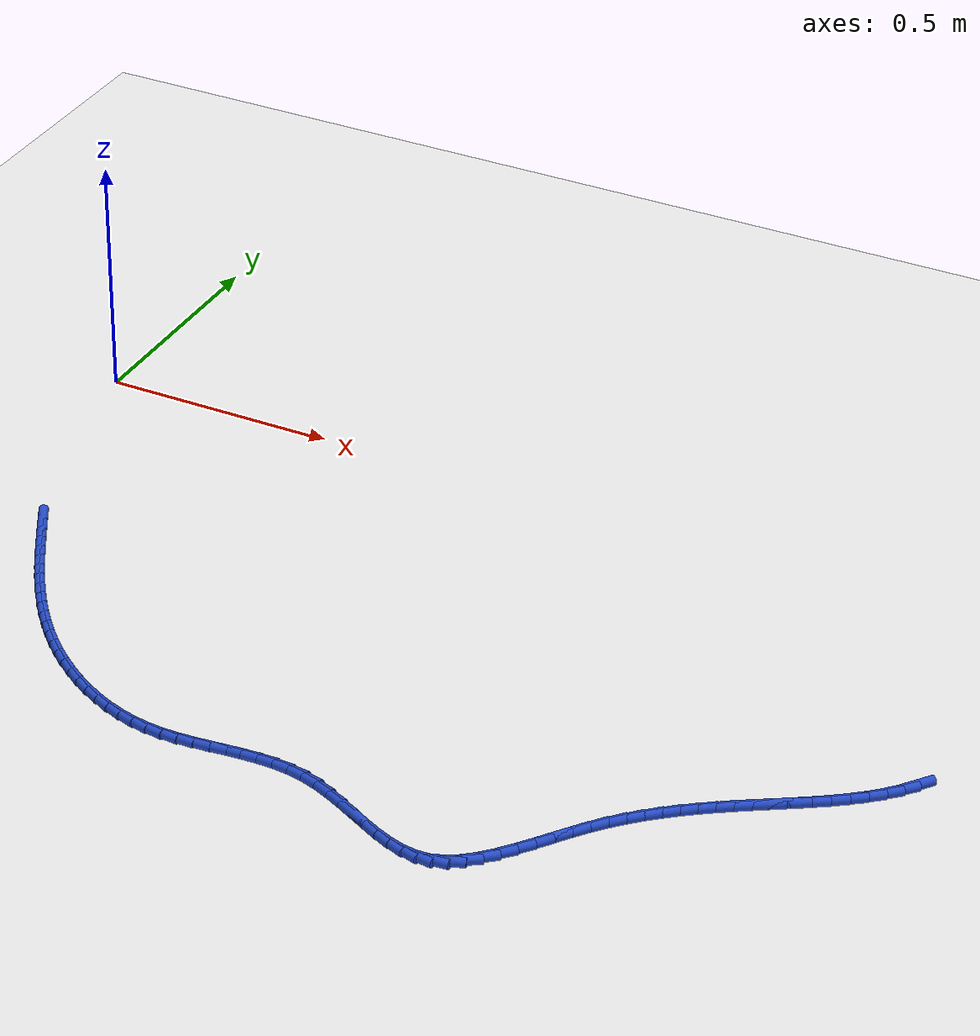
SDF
<sdf version="1.6">
 <world name="default">
  <model name="ground_plane">
   <static>1</static>
   <link name="link">
    <collision name="collision">
     <geometry><plane><normal>0 0 1</normal><size>100 100</size></plane></geometry>
     <surface><friction><ode><mu>100</mu><mu2>50</mu2></ode></friction></surface>
    </collision>
    <visual name="visual">
     <cast_shadows>0</cast_shadows>
     <geometry><plane><normal>0 0 1</normal><size>100 100</size></plane></geometry>
     <material>
      <script><uri>file://media/materials/scripts/gazebo.material</uri><name>Gazebo/WhiteGlow</name></script>
     </material>
    </visual>
   </link>
  </model>
  <model name="line">
   <link name="link_123">
    <pose>2.02572650319894 -0.5620259517079278 0.01 0 1.57 0.9168258184440197</pose>
    <collision name="collision">
     <geometry><cylinder><radius>0.01</radius><length>0.08</length></cylinder></geometry>
    </collision>
    <visual name="visual">
     <material>
      <script><name>Gazebo/Blue</name><uri>file://media/materials/scripts/gazebo.material</uri></script>
     </material>
     <geometry><cylinder><radius>0.01</radius><length>0.08</length></cylinder></geometry>
    </visual>
   </link>
   <link name="link_124">
    <pose>2.0061303369699215 -0.5875921096203487 0.01 0 1.57 0.8193676750237584</pose>
    <collision name="collision">
     <geometry><cylinder><radius>0.01</radius><length>0.08</length></cylinder></geometry>
    </collision>
    <visual name="visual">
     <material>
      <script><name>Gazebo/Blue</name><uri>file://media/materials/scripts/gazebo.material</uri></script>
     </material>
     <geometry><cylinder><radius>0.01</radius><length>0.08</length></cylinder></geometry>
    </visual>
   </link>
   <link name="link_125">
    <pose>1.9837516621861226 -0.6115452595180886 0.01 0 1.57 0.7397603806461012</pose>
    <collision name="collision">
     <geometry><cylinder><radius>0.01</radius><length>0.08</length></cylinder></geometry>
    </collision>
    <visual name="visual">
     <material>
      <script><name>Gazebo/Blue</name><uri>file://media/materials/scripts/gazebo.material</uri></script>
     </material>
     <geometry><cylinder><radius>0.01</radius><length>0.08</length></cylinder></geometry>
    </visual>
   </link>
   <link name="link_126">
    <pose>1.959057941344663 -0.634081989562781 0.01 0 1.57 0.6766644441975964</pose>
    <collision name="collision">
     <geometry><cylinder><radius>0.01</radius><length>0.08</length></cylinder></geometry>
    </collision>
    <visual name="visual">
     <material>
      <script><name>Gazebo/Blue</name><uri>file://media/materials/scripts/gazebo.material</uri></script>
     </material>
     <geometry><cylinder><radius>0.01</radius><length>0.08</length></cylinder></geometry>
    </visual>
   </link>
   <link name="link_127">
    <pose>1.9325166369426614 -0.6553988879160606 0.01 0 1.57 0.6284955298735553</pose>
    <collision name="collision">
     <geometry><cylinder><radius>0.01</radius><length>0.08</length></cylinder></geometry>
    </collision>
    <visual name="visual">
     <material>
      <script><name>Gazebo/Blue</name><uri>file://media/materials/scripts/gazebo.material</uri></script>
     </material>
     <geometry><cylinder><radius>0.01</radius><length>0.08</length></cylinder></geometry>
    </visual>
   </link>
   <link name="link_128">
    <pose>1.904595211477238 -0.675692542739562 0.01 0 1.57 0.5938447899911372</pose>
    <collision name="collision">
     <geometry><cylinder><radius>0.01</radius><length>0.08</length></cylinder></geometry>
    </collision>
    <visual name="visual">
     <material>
      <script><name>Gazebo/Blue</name><uri>file://media/materials/scripts/gazebo.material</uri></script>
     </material>
     <geometry><cylinder><radius>0.01</radius><length>0.08</length></cylinder></geometry>
    </visual>
   </link>
   <link name="link_129">
    <pose>1.8757611274455126 -0.6951595421949199 0.01 0 1.57 0.5716887323452812</pose>
    <collision name="collision">
     <geometry><cylinder><radius>0.01</radius><length>0.08</length></cylinder></geometry>
    </collision>
    <visual name="visual">
     <material>
      <script><name>Gazebo/Blue</name><uri>file://media/materials/scripts/gazebo.material</uri></script>
     </material>
     <geometry><cylinder><radius>0.01</radius><length>0.08</length></cylinder></geometry>
    </visual>
   </link>
   <link name="link_130">
    <pose>1.8464818473446036 -0.7139964744437683 0.01 0 1.57 0.5614899366355359</pose>
    <collision name="collision">
     <geometry><cylinder><radius>0.01</radius><length>0.08</length></cylinder></geometry>
    </collision>
    <visual name="visual">
     <material>
      <script><name>Gazebo/Blue</name><uri>file://media/materials/scripts/gazebo.material</uri></script>
     </material>
     <geometry><cylinder><radius>0.01</radius><length>0.08</length></cylinder></geometry>
    </visual>
   </link>
   <link name="link_131">
    <pose>1.8172248336716315 -0.732399927647742 0.01 0 1.57 0.5631276586455284</pose>
    <collision name="collision">
     <geometry><cylinder><radius>0.01</radius><length>0.08</length></cylinder></geometry>
    </collision>
    <visual name="visual">
     <material>
      <script><name>Gazebo/Blue</name><uri>file://media/materials/scripts/gazebo.material</uri></script>
     </material>
     <geometry><cylinder><radius>0.01</radius><length>0.08</length></cylinder></geometry>
    </visual>
   </link>
   <link name="link_132">
    <pose>1.788447296705108 -0.7505676225354588 0.01 0 1.57 0.5740536596827077</pose>
    <collision name="collision">
     <geometry><cylinder><radius>0.01</radius><length>0.08</length></cylinder></geometry>
    </collision>
    <visual name="visual">
     <material>
      <script><name>Gazebo/Blue</name><uri>file://media/materials/scripts/gazebo.material</uri></script>
     </material>
     <geometry><cylinder><radius>0.01</radius><length>0.08</length></cylinder></geometry>
    </visual>
   </link>
   <link name="link_133">
    <pose>1.7603735091028572 -0.7687230125543267 0.01 0 1.57 0.5915516911203159</pose>
    <collision name="collision">
     <geometry><cylinder><radius>0.01</radius><length>0.08</length></cylinder></geometry>
    </collision>
    <visual name="visual">
     <material>
      <script><name>Gazebo/Blue</name><uri>file://media/materials/scripts/gazebo.material</uri></script>
     </material>
     <geometry><cylinder><radius>0.01</radius><length>0.08</length></cylinder></geometry>
    </visual>
   </link>
   <link name="link_134">
    <pose>1.7329963856652735 -0.7871151093534183 0.01 0 1.57 0.615503261659312</pose>
    <collision name="collision">
     <geometry><cylinder><radius>0.01</radius><length>0.08</length></cylinder></geometry>
    </collision>
    <visual name="visual">
     <material>
      <script><name>Gazebo/Blue</name><uri>file://media/materials/scripts/gazebo.material</uri></script>
     </material>
     <geometry><cylinder><radius>0.01</radius><length>0.08</length></cylinder></geometry>
    </visual>
   </link>
   <link name="link_135">
    <pose>1.7062989049313857 -0.8059940222448587 0.01 0 1.57 0.6457023532757835</pose>
    <collision name="collision">
     <geometry><cylinder><radius>0.01</radius><length>0.08</length></cylinder></geometry>
    </collision>
    <visual name="visual">
     <material>
      <script><name>Gazebo/Blue</name><uri>file://media/materials/scripts/gazebo.material</uri></script>
     </material>
     <geometry><cylinder><radius>0.01</radius><length>0.08</length></cylinder></geometry>
    </visual>
   </link>
   <link name="link_136">
    <pose>1.6802640454402222 -0.8256098605407723 0.01 0 1.57 0.6817017660045945</pose>
    <collision name="collision">
     <geometry><cylinder><radius>0.01</radius><length>0.08</length></cylinder></geometry>
    </collision>
    <visual name="visual">
     <material>
      <script><name>Gazebo/Blue</name><uri>file://media/materials/scripts/gazebo.material</uri></script>
     </material>
     <geometry><cylinder><radius>0.01</radius><length>0.08</length></cylinder></geometry>
    </visual>
   </link>
   <link name="link_137">
    <pose>1.6548747857308121 -0.8462127335532843 0.01 0 1.57 0.7228057721050001</pose>
    <collision name="collision">
     <geometry><cylinder><radius>0.01</radius><length>0.08</length></cylinder></geometry>
    </collision>
    <visual name="visual">
     <material>
      <script><name>Gazebo/Blue</name><uri>file://media/materials/scripts/gazebo.material</uri></script>
     </material>
     <geometry><cylinder><radius>0.01</radius><length>0.08</length></cylinder></geometry>
    </visual>
   </link>
   <link name="link_138">
    <pose>1.6301141043421836 -0.8680527505945199 0.01 0 1.57 0.7680890970757797</pose>
    <collision name="collision">
     <geometry><cylinder><radius>0.01</radius><length>0.08</length></cylinder></geometry>
    </collision>
    <visual name="visual">
     <material>
      <script><name>Gazebo/Blue</name><uri>file://media/materials/scripts/gazebo.material</uri></script>
     </material>
     <geometry><cylinder><radius>0.01</radius><length>0.08</length></cylinder></geometry>
    </visual>
   </link>
   <link name="link_139">
    <pose>1.6059649798133657 -0.8913800209766031 0.01 0 1.57 0.8164467604643182</pose>
    <collision name="collision">
     <geometry><cylinder><radius>0.01</radius><length>0.08</length></cylinder></geometry>
    </collision>
    <visual name="visual">
     <material>
      <script><name>Gazebo/Blue</name><uri>file://media/materials/scripts/gazebo.material</uri></script>
     </material>
     <geometry><cylinder><radius>0.01</radius><length>0.08</length></cylinder></geometry>
    </visual>
   </link>
   <link name="link_140">
    <pose>1.5824103906833875 -0.9164446540116588 0.01 0 1.57 0.8666641975430633</pose>
    <collision name="collision">
     <geometry><cylinder><radius>0.01</radius><length>0.08</length></cylinder></geometry>
    </collision>
    <visual name="visual">
     <material>
      <script><name>Gazebo/Blue</name><uri>file://media/materials/scripts/gazebo.material</uri></script>
     </material>
     <geometry><cylinder><radius>0.01</radius><length>0.08</length></cylinder></geometry>
    </visual>
   </link>
   <link name="link_141">
    <pose>1.5594332598909573 -0.9434964076149732 0.01 0 1.57 0.911592339877278</pose>
    <collision name="collision">
     <geometry><cylinder><radius>0.01</radius><length>0.08</length></cylinder></geometry>
    </collision>
    <visual name="visual">
     <material>
      <script><name>Gazebo/Blue</name><uri>file://media/materials/scripts/gazebo.material</uri></script>
     </material>
     <geometry><cylinder><radius>0.01</radius><length>0.08</length></cylinder></geometry>
    </visual>
   </link>
   <link name="link_142">
    <pose>1.5369695425548875 -0.9724882006966464 0.01 0 1.57 0.9356388455305841</pose>
    <collision name="collision">
     <geometry><cylinder><radius>0.01</radius><length>0.08</length></cylinder></geometry>
    </collision>
    <visual name="visual">
     <material>
      <script><name>Gazebo/Blue</name><uri>file://media/materials/scripts/gazebo.material</uri></script>
     </material>
     <geometry><cylinder><radius>0.01</radius><length>0.08</length></cylinder></geometry>
    </visual>
   </link>
   <link name="link_143">
    <pose>1.5148228065319613 -1.0025362579525954 0.01 0 1.57 0.9381569502244445</pose>
    <collision name="collision">
     <geometry><cylinder><radius>0.01</radius><length>0.08</length></cylinder></geometry>
    </collision>
    <visual name="visual">
     <material>
      <script><name>Gazebo/Blue</name><uri>file://media/materials/scripts/gazebo.material</uri></script>
     </material>
     <geometry><cylinder><radius>0.01</radius><length>0.08</length></cylinder></geometry>
    </visual>
   </link>
   <link name="link_144">
    <pose>1.492773462258145 -1.0326104480040337 0.01 0 1.57 0.9192230128820612</pose>
    <collision name="collision">
     <geometry><cylinder><radius>0.01</radius><length>0.08</length></cylinder></geometry>
    </collision>
    <visual name="visual">
     <material>
      <script><name>Gazebo/Blue</name><uri>file://media/materials/scripts/gazebo.material</uri></script>
     </material>
     <geometry><cylinder><radius>0.01</radius><length>0.08</length></cylinder></geometry>
    </visual>
   </link>
   <link name="link_145">
    <pose>1.470601920169404 -1.061680639472176 0.01 0 1.57 0.8764231776754625</pose>
    <collision name="collision">
     <geometry><cylinder><radius>0.01</radius><length>0.08</length></cylinder></geometry>
    </collision>
    <visual name="visual">
     <material>
      <script><name>Gazebo/Blue</name><uri>file://media/materials/scripts/gazebo.material</uri></script>
     </material>
     <geometry><cylinder><radius>0.01</radius><length>0.08</length></cylinder></geometry>
    </visual>
   </link>
   <link name="link_146">
    <pose>1.4480885907017067 -1.088716700978235 0.01 0 1.57 0.8044640859596119</pose>
    <collision name="collision">
     <geometry><cylinder><radius>0.01</radius><length>0.08</length></cylinder></geometry>
    </collision>
    <visual name="visual">
     <material>
      <script><name>Gazebo/Blue</name><uri>file://media/materials/scripts/gazebo.material</uri></script>
     </material>
     <geometry><cylinder><radius>0.01</radius><length>0.08</length></cylinder></geometry>
    </visual>
   </link>
   <link name="link_147">
    <pose>1.4250138842910192 -1.1126885011434247 0.01 0 1.57 0.694680879472128</pose>
    <collision name="collision">
     <geometry><cylinder><radius>0.01</radius><length>0.08</length></cylinder></geometry>
    </collision>
    <visual name="visual">
     <material>
      <script><name>Gazebo/Blue</name><uri>file://media/materials/scripts/gazebo.material</uri></script>
     </material>
     <geometry><cylinder><radius>0.01</radius><length>0.08</length></cylinder></geometry>
    </visual>
   </link>
   <link name="link_148">
    <pose>1.4011582113733083 -1.1325659085889594 0.01 0 1.57 0.535647546406085</pose>
    <collision name="collision">
     <geometry><cylinder><radius>0.01</radius><length>0.08</length></cylinder></geometry>
    </collision>
    <visual name="visual">
     <material>
      <script><name>Gazebo/Blue</name><uri>file://media/materials/scripts/gazebo.material</uri></script>
     </material>
     <geometry><cylinder><radius>0.01</radius><length>0.08</length></cylinder></geometry>
    </visual>
   </link>
   <link name="link_149">
    <pose>1.3763019823845406 -1.147318791936053 0.01 0 1.57 0.31851423371168996</pose>
    <collision name="collision">
     <geometry><cylinder><radius>0.01</radius><length>0.08</length></cylinder></geometry>
    </collision>
    <visual name="visual">
     <material>
      <script><name>Gazebo/Blue</name><uri>file://media/materials/scripts/gazebo.material</uri></script>
     </material>
     <geometry><cylinder><radius>0.01</radius><length>0.08</length></cylinder></geometry>
    </visual>
   </link>
   <link name="link_150">
    <pose>1.3502256444737462 -1.155917237078907 0.01 0 1.57 0.06806609103597365</pose>
    <collision name="collision">
     <geometry><cylinder><radius>0.01</radius><length>0.08</length></cylinder></geometry>
    </collision>
    <visual name="visual">
     <material>
      <script><name>Gazebo/Blue</name><uri>file://media/materials/scripts/gazebo.material</uri></script>
     </material>
     <geometry><cylinder><radius>0.01</radius><length>0.08</length></cylinder></geometry>
    </visual>
   </link>
   <link name="link_151">
    <pose>1.3227867726834666 -1.157787783459343 0.01 0 1.57 -0.1388695908707966</pose>
    <collision name="collision">
     <geometry><cylinder><radius>0.01</radius><length>0.08</length></cylinder></geometry>
    </collision>
    <visual name="visual">
     <material>
      <script><name>Gazebo/Blue</name><uri>file://media/materials/scripts/gazebo.material</uri></script>
     </material>
     <geometry><cylinder><radius>0.01</radius><length>0.08</length></cylinder></geometry>
    </visual>
   </link>
   <link name="link_152">
    <pose>1.2940826907227096 -1.1537758363063848 0.01 0 1.57 -0.28611113721716214</pose>
    <collision name="collision">
     <geometry><cylinder><radius>0.01</radius><length>0.08</length></cylinder></geometry>
    </collision>
    <visual name="visual">
     <material>
      <script><name>Gazebo/Blue</name><uri>file://media/materials/scripts/gazebo.material</uri></script>
     </material>
     <geometry><cylinder><radius>0.01</radius><length>0.08</length></cylinder></geometry>
    </visual>
   </link>
   <link name="link_153">
    <pose>1.2642571709005976 -1.145001690092611 0.01 0 1.57 -0.38315601298711505</pose>
    <collision name="collision">
     <geometry><cylinder><radius>0.01</radius><length>0.08</length></cylinder></geometry>
    </collision>
    <visual name="visual">
     <material>
      <script><name>Gazebo/Blue</name><uri>file://media/materials/scripts/gazebo.material</uri></script>
     </material>
     <geometry><cylinder><radius>0.01</radius><length>0.08</length></cylinder></geometry>
    </visual>
   </link>
   <link name="link_154">
    <pose>1.233453985526252 -1.1325856392906017 0.01 0 1.57 -0.44112596272156723</pose>
    <collision name="collision">
     <geometry><cylinder><radius>0.01</radius><length>0.08</length></cylinder></geometry>
    </collision>
    <visual name="visual">
     <material>
      <script><name>Gazebo/Blue</name><uri>file://media/materials/scripts/gazebo.material</uri></script>
     </material>
     <geometry><cylinder><radius>0.01</radius><length>0.08</length></cylinder></geometry>
    </visual>
   </link>
   <link name="link_155">
    <pose>1.2018169069087958 -1.1176479783729365 0.01 0 1.57 -0.46797822708476705</pose>
    <collision name="collision">
     <geometry><cylinder><radius>0.01</radius><length>0.08</length></cylinder></geometry>
    </collision>
    <visual name="visual">
     <material>
      <script><name>Gazebo/Blue</name><uri>file://media/materials/scripts/gazebo.material</uri></script>
     </material>
     <geometry><cylinder><radius>0.01</radius><length>0.08</length></cylinder></geometry>
    </visual>
   </link>
   <link name="link_156">
    <pose>1.1694897073573507 -1.101309001812194 0.01 0 1.57 -0.46809653211206836</pose>
    <collision name="collision">
     <geometry><cylinder><radius>0.01</radius><length>0.08</length></cylinder></geometry>
    </collision>
    <visual name="visual">
     <material>
      <script><name>Gazebo/Blue</name><uri>file://media/materials/scripts/gazebo.material</uri></script>
     </material>
     <geometry><cylinder><radius>0.01</radius><length>0.08</length></cylinder></geometry>
    </visual>
   </link>
   <link name="link_157">
    <pose>1.1366161591810375 -1.0846890040809538 0.01 0 1.57 -0.4428245082812941</pose>
    <collision name="collision">
     <geometry><cylinder><radius>0.01</radius><length>0.08</length></cylinder></geometry>
    </collision>
    <visual name="visual">
     <material>
      <script><name>Gazebo/Blue</name><uri>file://media/materials/scripts/gazebo.material</uri></script>
     </material>
     <geometry><cylinder><radius>0.01</radius><length>0.08</length></cylinder></geometry>
    </visual>
   </link>
   <link name="link_158">
    <pose>1.1033400346889812 -1.0689082796517964 0.01 0 1.57 -0.3909297043378241</pose>
    <collision name="collision">
     <geometry><cylinder><radius>0.01</radius><length>0.08</length></cylinder></geometry>
    </collision>
    <visual name="visual">
     <material>
      <script><name>Gazebo/Blue</name><uri>file://media/materials/scripts/gazebo.material</uri></script>
     </material>
     <geometry><cylinder><radius>0.01</radius><length>0.08</length></cylinder></geometry>
    </visual>
   </link>
   <link name="link_159">
    <pose>1.0698051061903031 -1.0550871229973007 0.01 0 1.57 -0.30898321187638306</pose>
    <collision name="collision">
     <geometry><cylinder><radius>0.01</radius><length>0.08</length></cylinder></geometry>
    </collision>
    <visual name="visual">
     <material>
      <script><name>Gazebo/Blue</name><uri>file://media/materials/scripts/gazebo.material</uri></script>
     </material>
     <geometry><cylinder><radius>0.01</radius><length>0.08</length></cylinder></geometry>
    </visual>
   </link>
   <link name="link_160">
    <pose>1.0361551459941252 -1.0443458285900455 0.01 0 1.57 -0.19828216299461632</pose>
    <collision name="collision">
     <geometry><cylinder><radius>0.01</radius><length>0.08</length></cylinder></geometry>
    </collision>
    <visual name="visual">
     <material>
      <script><name>Gazebo/Blue</name><uri>file://media/materials/scripts/gazebo.material</uri></script>
     </material>
     <geometry><cylinder><radius>0.01</radius><length>0.08</length></cylinder></geometry>
    </visual>
   </link>
   <link name="link_161">
    <pose>1.0025190572535252 -1.037587590596732 0.01 0 1.57 -0.09274800086813154</pose>
    <collision name="collision">
     <geometry><cylinder><radius>0.01</radius><length>0.08</length></cylinder></geometry>
    </collision>
    <visual name="visual">
     <material>
      <script><name>Gazebo/Blue</name><uri>file://media/materials/scripts/gazebo.material</uri></script>
     </material>
     <geometry><cylinder><radius>0.01</radius><length>0.08</length></cylinder></geometry>
    </visual>
   </link>
   <link name="link_162">
    <pose>0.9689400376911078 -1.0344642426417334 0.01 0 1.57 -0.008476023704439483</pose>
    <collision name="collision">
     <geometry><cylinder><radius>0.01</radius><length>0.08</length></cylinder></geometry>
    </collision>
    <visual name="visual">
     <material>
      <script><name>Gazebo/Blue</name><uri>file://media/materials/scripts/gazebo.material</uri></script>
     </material>
     <geometry><cylinder><radius>0.01</radius><length>0.08</length></cylinder></geometry>
    </visual>
   </link>
   <link name="link_163">
    <pose>0.9354306420815793 -1.034180209408262 0.01 0 1.57 0.05257752502908102</pose>
    <collision name="collision">
     <geometry><cylinder><radius>0.01</radius><length>0.08</length></cylinder></geometry>
    </collision>
    <visual name="visual">
     <material>
      <script><name>Gazebo/Blue</name><uri>file://media/materials/scripts/gazebo.material</uri></script>
     </material>
     <geometry><cylinder><radius>0.01</radius><length>0.08</length></cylinder></geometry>
    </visual>
   </link>
   <link name="link_164">
    <pose>0.9020033866724522 -1.0359393530549725 0.01 0 1.57 0.08994413229092467</pose>
    <collision name="collision">
     <geometry><cylinder><radius>0.01</radius><length>0.08</length></cylinder></geometry>
    </collision>
    <visual name="visual">
     <material>
      <script><name>Gazebo/Blue</name><uri>file://media/materials/scripts/gazebo.material</uri></script>
     </material>
     <geometry><cylinder><radius>0.01</radius><length>0.08</length></cylinder></geometry>
    </visual>
   </link>
   <link name="link_165">
    <pose>0.8686707877112406 -1.038945535740519 0.01 0 1.57 0.10367627801684393</pose>
    <collision name="collision">
     <geometry><cylinder><radius>0.01</radius><length>0.08</length></cylinder></geometry>
    </collision>
    <visual name="visual">
     <material>
      <script><name>Gazebo/Blue</name><uri>file://media/materials/scripts/gazebo.material</uri></script>
     </material>
     <geometry><cylinder><radius>0.01</radius><length>0.08</length></cylinder></geometry>
    </visual>
   </link>
   <link name="link_166">
    <pose>0.8354453614454571 -1.0424026196235558 0.01 0 1.57 0.09372184056774482</pose>
    <collision name="collision">
     <geometry><cylinder><radius>0.01</radius><length>0.08</length></cylinder></geometry>
    </collision>
    <visual name="visual">
     <material>
      <script><name>Gazebo/Blue</name><uri>file://media/materials/scripts/gazebo.material</uri></script>
     </material>
     <geometry><cylinder><radius>0.01</radius><length>0.08</length></cylinder></geometry>
    </visual>
   </link>
   <link name="link_167">
    <pose>0.8023396241226147 -1.0455144668627372 0.01 0 1.57 0.05968824120633652</pose>
    <collision name="collision">
     <geometry><cylinder><radius>0.01</radius><length>0.08</length></cylinder></geometry>
    </collision>
    <visual name="visual">
     <material>
      <script><name>Gazebo/Blue</name><uri>file://media/materials/scripts/gazebo.material</uri></script>
     </material>
     <geometry><cylinder><radius>0.01</radius><length>0.08</length></cylinder></geometry>
    </visual>
   </link>
   <link name="link_168">
    <pose>0.7693660919902267 -1.0474849396167172 0.01 0 1.57 0.0010040088465183034</pose>
    <collision name="collision">
     <geometry><cylinder><radius>0.01</radius><length>0.08</length></cylinder></geometry>
    </collision>
    <visual name="visual">
     <material>
      <script><name>Gazebo/Blue</name><uri>file://media/materials/scripts/gazebo.material</uri></script>
     </material>
     <geometry><cylinder><radius>0.01</radius><length>0.08</length></cylinder></geometry>
    </visual>
   </link>
   <link name="link_169">
    <pose>0.7365372812958056 -1.0475179000441501 0.01 0 1.57 -0.08150637159919982</pose>
    <collision name="collision">
     <geometry><cylinder><radius>0.01</radius><length>0.08</length></cylinder></geometry>
    </collision>
    <visual name="visual">
     <material>
      <script><name>Gazebo/Blue</name><uri>file://media/materials/scripts/gazebo.material</uri></script>
     </material>
     <geometry><cylinder><radius>0.01</radius><length>0.08</length></cylinder></geometry>
    </visual>
   </link>
   <link name="link_170">
    <pose>0.7038688101867056 -1.0448492994515197 0.01 0 1.57 -0.17115820241930998</pose>
    <collision name="collision">
     <geometry><cylinder><radius>0.01</radius><length>0.08</length></cylinder></geometry>
    </collision>
    <visual name="visual">
     <material>
      <script><name>Gazebo/Blue</name><uri>file://media/materials/scripts/gazebo.material</uri></script>
     </material>
     <geometry><cylinder><radius>0.01</radius><length>0.08</length></cylinder></geometry>
    </visual>
   </link>
   <link name="link_171">
    <pose>0.6714272102613301 -1.0392417886974155 0.01 0 1.57 -0.25452552607729584</pose>
    <collision name="collision">
     <geometry><cylinder><radius>0.01</radius><length>0.08</length></cylinder></geometry>
    </collision>
    <visual name="visual">
     <material>
      <script><name>Gazebo/Blue</name><uri>file://media/materials/scripts/gazebo.material</uri></script>
     </material>
     <geometry><cylinder><radius>0.01</radius><length>0.08</length></cylinder></geometry>
    </visual>
   </link>
   <link name="link_172">
    <pose>0.639320643375881 -1.0308886835764384 0.01 0 1.57 -0.33134692294435364</pose>
    <collision name="collision">
     <geometry><cylinder><radius>0.01</radius><length>0.08</length></cylinder></geometry>
    </collision>
    <visual name="visual">
     <material>
      <script><name>Gazebo/Blue</name><uri>file://media/materials/scripts/gazebo.material</uri></script>
     </material>
     <geometry><cylinder><radius>0.01</radius><length>0.08</length></cylinder></geometry>
    </visual>
   </link>
   <link name="link_173">
    <pose>0.6076584930317298 -1.0199959378000927 0.01 0 1.57 -0.40201722797378564</pose>
    <collision name="collision">
     <geometry><cylinder><radius>0.01</radius><length>0.08</length></cylinder></geometry>
    </collision>
    <visual name="visual">
     <material>
      <script><name>Gazebo/Blue</name><uri>file://media/materials/scripts/gazebo.material</uri></script>
     </material>
     <geometry><cylinder><radius>0.01</radius><length>0.08</length></cylinder></geometry>
    </visual>
   </link>
   <link name="link_174">
    <pose>0.5765501427302488 -1.0067695050798826 0.01 0 1.57 -0.4670991904850369</pose>
    <collision name="collision">
     <geometry><cylinder><radius>0.01</radius><length>0.08</length></cylinder></geometry>
    </collision>
    <visual name="visual">
     <material>
      <script><name>Gazebo/Blue</name><uri>file://media/materials/scripts/gazebo.material</uri></script>
     </material>
     <geometry><cylinder><radius>0.01</radius><length>0.08</length></cylinder></geometry>
    </visual>
   </link>
   <link name="link_175">
    <pose>0.5461049759728098 -0.991415339127312 0.01 0 1.57 -0.5272424780498265</pose>
    <collision name="collision">
     <geometry><cylinder><radius>0.01</radius><length>0.08</length></cylinder></geometry>
    </collision>
    <visual name="visual">
     <material>
      <script><name>Gazebo/Blue</name><uri>file://media/materials/scripts/gazebo.material</uri></script>
     </material>
     <geometry><cylinder><radius>0.01</radius><length>0.08</length></cylinder></geometry>
    </visual>
   </link>
   <link name="link_176">
    <pose>0.5164323762607838 -0.9741393936538841 0.01 0 1.57 -0.583129640678686</pose>
    <collision name="collision">
     <geometry><cylinder><radius>0.01</radius><length>0.08</length></cylinder></geometry>
    </collision>
    <visual name="visual">
     <material>
      <script><name>Gazebo/Blue</name><uri>file://media/materials/scripts/gazebo.material</uri></script>
     </material>
     <geometry><cylinder><radius>0.01</radius><length>0.08</length></cylinder></geometry>
    </visual>
   </link>
   <link name="link_177">
    <pose>0.4876417270955444 -0.9551476223711045 0.01 0 1.57 -0.6354448026063773</pose>
    <collision name="collision">
     <geometry><cylinder><radius>0.01</radius><length>0.08</length></cylinder></geometry>
    </collision>
    <visual name="visual">
     <material>
      <script><name>Gazebo/Blue</name><uri>file://media/materials/scripts/gazebo.material</uri></script>
     </material>
     <geometry><cylinder><radius>0.01</radius><length>0.08</length></cylinder></geometry>
    </visual>
   </link>
   <link name="link_178">
    <pose>0.4598424119784624 -0.9346459789904764 0.01 0 1.57 -0.6848596018645198</pose>
    <collision name="collision">
     <geometry><cylinder><radius>0.01</radius><length>0.08</length></cylinder></geometry>
    </collision>
    <visual name="visual">
     <material>
      <script><name>Gazebo/Blue</name><uri>file://media/materials/scripts/gazebo.material</uri></script>
     </material>
     <geometry><cylinder><radius>0.01</radius><length>0.08</length></cylinder></geometry>
    </visual>
   </link>
   <link name="link_179">
    <pose>0.4331438144109098 -0.912840417223504 0.01 0 1.57 -0.7320316070554934</pose>
    <collision name="collision">
     <geometry><cylinder><radius>0.01</radius><length>0.08</length></cylinder></geometry>
    </collision>
    <visual name="visual">
     <material>
      <script><name>Gazebo/Blue</name><uri>file://media/materials/scripts/gazebo.material</uri></script>
     </material>
     <geometry><cylinder><radius>0.01</radius><length>0.08</length></cylinder></geometry>
    </visual>
   </link>
   <link name="link_180">
    <pose>0.40765531789425874 -0.8899368907816911 0.01 0 1.57 -0.7774514683725674</pose>
    <collision name="collision">
     <geometry><cylinder><radius>0.01</radius><length>0.08</length></cylinder></geometry>
    </collision>
    <visual name="visual">
     <material>
      <script><name>Gazebo/Blue</name><uri>file://media/materials/scripts/gazebo.material</uri></script>
     </material>
     <geometry><cylinder><radius>0.01</radius><length>0.08</length></cylinder></geometry>
    </visual>
   </link>
   <link name="link_181">
    <pose>0.38346428908499064 -0.8661273161585502 0.01 0 1.57 -0.8204140763294187</pose>
    <collision name="collision">
     <geometry><cylinder><radius>0.01</radius><length>0.08</length></cylinder></geometry>
    </collision>
    <visual name="visual">
     <material>
      <script><name>Gazebo/Blue</name><uri>file://media/materials/scripts/gazebo.material</uri></script>
     </material>
     <geometry><cylinder><radius>0.01</radius><length>0.08</length></cylinder></geometry>
    </visual>
   </link>
   <link name="link_182">
    <pose>0.3605162773333482 -0.8415131917857567 0.01 0 1.57 -0.8602517890696926</pose>
    <collision name="collision">
     <geometry><cylinder><radius>0.01</radius><length>0.08</length></cylinder></geometry>
    </collision>
    <visual name="visual">
     <material>
      <script><name>Gazebo/Blue</name><uri>file://media/materials/scripts/gazebo.material</uri></script>
     </material>
     <geometry><cylinder><radius>0.01</radius><length>0.08</length></cylinder></geometry>
    </visual>
   </link>
   <link name="link_183">
    <pose>0.33870061584125216 -0.8161601745231084 0.01 0 1.57 -0.8966872298158728</pose>
    <collision name="collision">
     <geometry><cylinder><radius>0.01</radius><length>0.08</length></cylinder></geometry>
    </collision>
    <visual name="visual">
     <material>
      <script><name>Gazebo/Blue</name><uri>file://media/materials/scripts/gazebo.material</uri></script>
     </material>
     <geometry><cylinder><radius>0.01</radius><length>0.08</length></cylinder></geometry>
    </visual>
   </link>
   <link name="link_184">
    <pose>0.3179064968836154 -0.7901338313799666 0.01 0 1.57 -0.9295142232170563</pose>
    <collision name="collision">
     <geometry><cylinder><radius>0.01</radius><length>0.08</length></cylinder></geometry>
    </collision>
    <visual name="visual">
     <material>
      <script><name>Gazebo/Blue</name><uri>file://media/materials/scripts/gazebo.material</uri></script>
     </material>
     <geometry><cylinder><radius>0.01</radius><length>0.08</length></cylinder></geometry>
    </visual>
   </link>
   <link name="link_185">
    <pose>0.2980231127353493 -0.7634997293656911 0.01 0 1.57 -0.9585888839109471</pose>
    <collision name="collision">
     <geometry><cylinder><radius>0.01</radius><length>0.08</length></cylinder></geometry>
    </collision>
    <visual name="visual">
     <material>
      <script><name>Gazebo/Blue</name><uri>file://media/materials/scripts/gazebo.material</uri></script>
     </material>
     <geometry><cylinder><radius>0.01</radius><length>0.08</length></cylinder></geometry>
    </visual>
   </link>
   <link name="link_186">
    <pose>0.2789396556713658 -0.7363234354896421 0.01 0 1.57 -0.9838194178935404</pose>
    <collision name="collision">
     <geometry><cylinder><radius>0.01</radius><length>0.08</length></cylinder></geometry>
    </collision>
    <visual name="visual">
     <material>
      <script><name>Gazebo/Blue</name><uri>file://media/materials/scripts/gazebo.material</uri></script>
     </material>
     <geometry><cylinder><radius>0.01</radius><length>0.08</length></cylinder></geometry>
    </visual>
   </link>
   <link name="link_187">
    <pose>0.26054531796657665 -0.7086705167611799 0.01 0 1.57 -1.0051550919920862</pose>
    <collision name="collision">
     <geometry><cylinder><radius>0.01</radius><length>0.08</length></cylinder></geometry>
    </collision>
    <visual name="visual">
     <material>
      <script><name>Gazebo/Blue</name><uri>file://media/materials/scripts/gazebo.material</uri></script>
     </material>
     <geometry><cylinder><radius>0.01</radius><length>0.08</length></cylinder></geometry>
    </visual>
   </link>
   <link name="link_188">
    <pose>0.2427292918958937 -0.6806065401896645 0.01 0 1.57 -1.0225755218564967</pose>
    <collision name="collision">
     <geometry><cylinder><radius>0.01</radius><length>0.08</length></cylinder></geometry>
    </collision>
    <visual name="visual">
     <material>
      <script><name>Gazebo/Blue</name><uri>file://media/materials/scripts/gazebo.material</uri></script>
     </material>
     <geometry><cylinder><radius>0.01</radius><length>0.08</length></cylinder></geometry>
    </visual>
   </link>
   <link name="link_189">
    <pose>0.22538076973422855 -0.6521970727844556 0.01 0 1.57 -1.0360810641878035</pose>
    <collision name="collision">
     <geometry><cylinder><radius>0.01</radius><length>0.08</length></cylinder></geometry>
    </collision>
    <visual name="visual">
     <material>
      <script><name>Gazebo/Blue</name><uri>file://media/materials/scripts/gazebo.material</uri></script>
     </material>
     <geometry><cylinder><radius>0.01</radius><length>0.08</length></cylinder></geometry>
    </visual>
   </link>
   <link name="link_190">
    <pose>0.20838894375649386 -0.6235076815549151 0.01 0 1.57 -1.0456847768868855</pose>
    <collision name="collision">
     <geometry><cylinder><radius>0.01</radius><length>0.08</length></cylinder></geometry>
    </collision>
    <visual name="visual">
     <material>
      <script><name>Gazebo/Blue</name><uri>file://media/materials/scripts/gazebo.material</uri></script>
     </material>
     <geometry><cylinder><radius>0.01</radius><length>0.08</length></cylinder></geometry>
    </visual>
   </link>
   <link name="link_191">
    <pose>0.19164300623760103 -0.5946039335104024 0.01 0 1.57 -1.0514061674676007</pose>
    <collision name="collision">
     <geometry><cylinder><radius>0.01</radius><length>0.08</length></cylinder></geometry>
    </collision>
    <visual name="visual">
     <material>
      <script><name>Gazebo/Blue</name><uri>file://media/materials/scripts/gazebo.material</uri></script>
     </material>
     <geometry><cylinder><radius>0.01</radius><length>0.08</length></cylinder></geometry>
    </visual>
   </link>
   <link name="link_192">
    <pose>0.175032149452462 -0.5655513956602778 0.01 0 1.57 -1.054371521688841</pose>
    <collision name="collision">
     <geometry><cylinder><radius>0.01</radius><length>0.08</length></cylinder></geometry>
    </collision>
    <visual name="visual">
     <material>
      <script><name>Gazebo/Blue</name><uri>file://media/materials/scripts/gazebo.material</uri></script>
     </material>
     <geometry><cylinder><radius>0.01</radius><length>0.08</length></cylinder></geometry>
    </visual>
   </link>
   <link name="link_193">
    <pose>0.1584804536446457 -0.5364020676794692 0.01 0 1.57 -1.060159784268616</pose>
    <collision name="collision">
     <geometry><cylinder><radius>0.01</radius><length>0.08</length></cylinder></geometry>
    </collision>
    <visual name="visual">
     <material>
      <script><name>Gazebo/Blue</name><uri>file://media/materials/scripts/gazebo.material</uri></script>
     </material>
     <geometry><cylinder><radius>0.01</radius><length>0.08</length></cylinder></geometry>
    </visual>
   </link>
  </model>
 </world>
</sdf>
